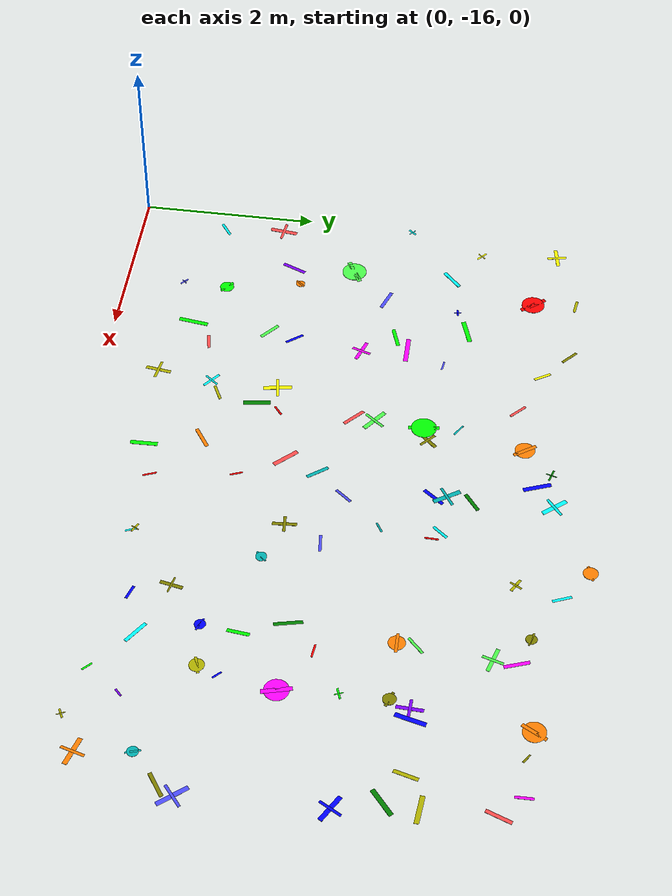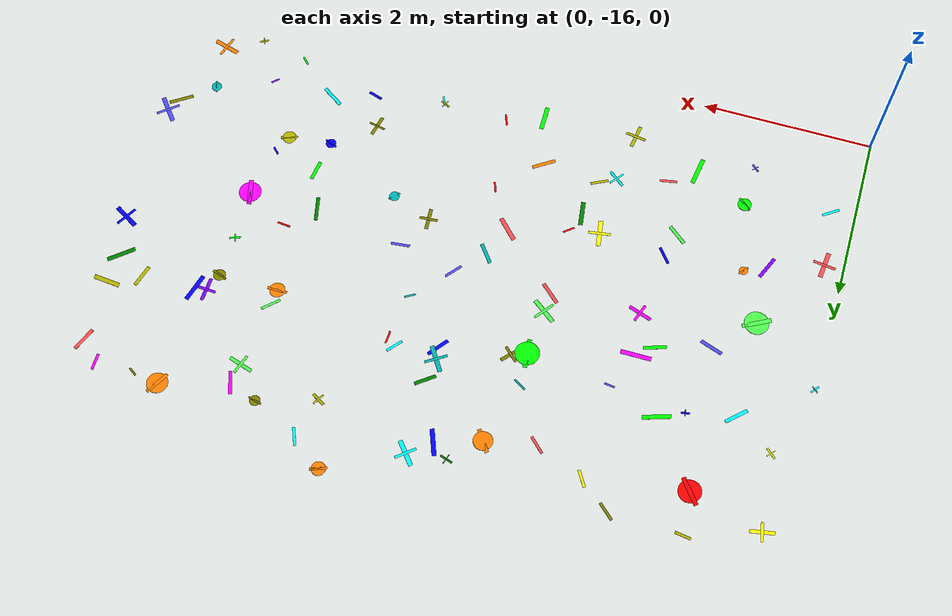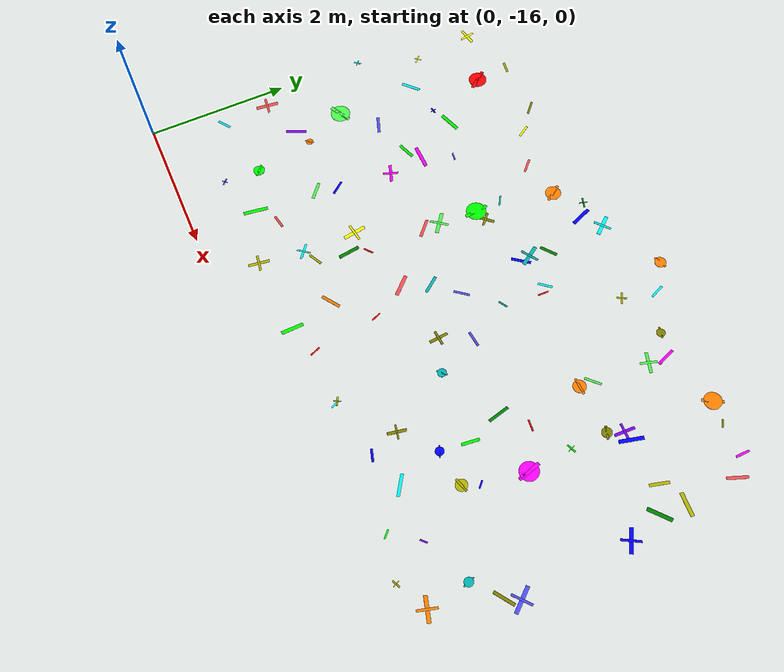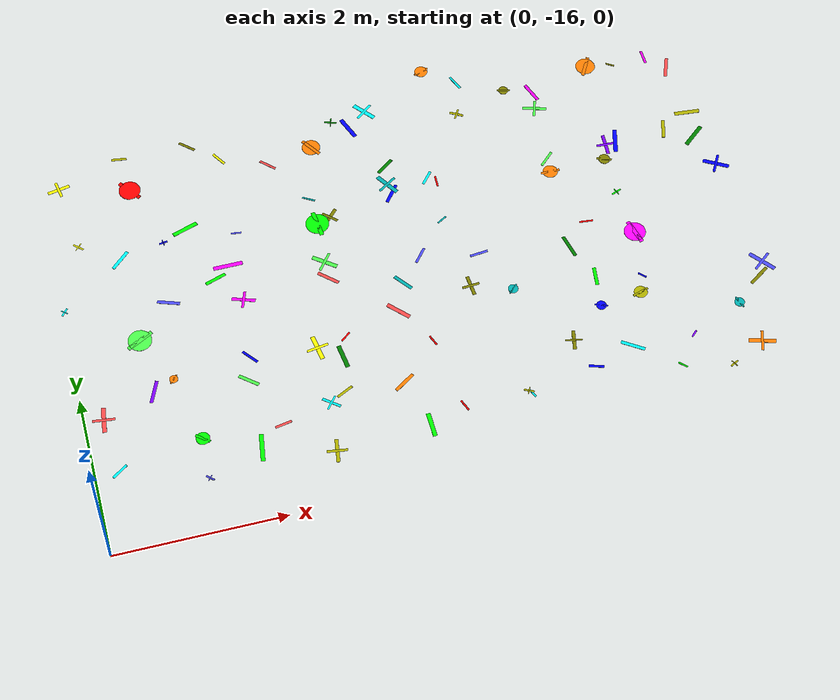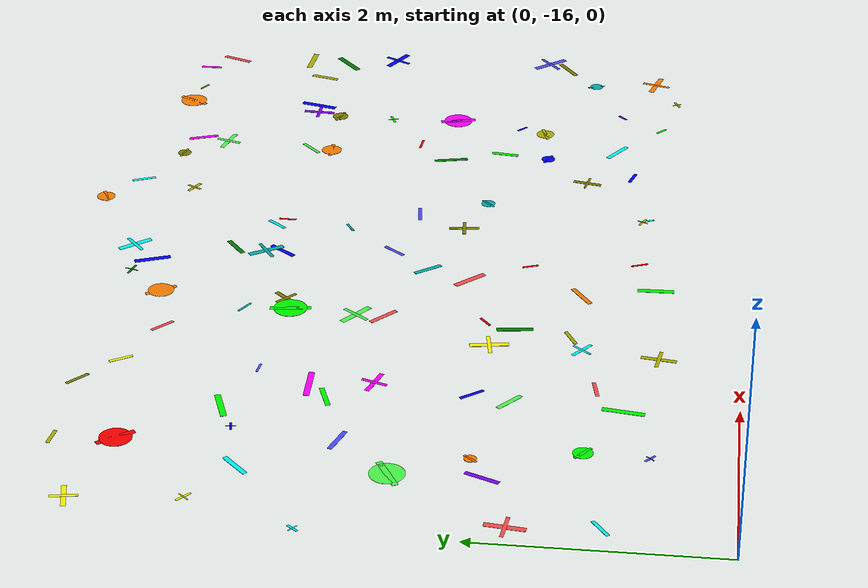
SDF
<sdf version="1.6">
 <world name="default">
  <model name="letter_N_1134">
   <static>true</static>
   <pose>0.28 -15.00 0.005 0 0 0.611</pose>
   <link name="link">
    <visual name="visual">
     <geometry><box><size>0.21 0.03 0.002</size></box></geometry>
     <material>
      <ambient>0.0 1.0 1.0 1</ambient>
      <diffuse>0.0 1.0 1.0 1</diffuse>
      <specular>0.1 0.1 0.1 1</specular>
     </material>
    </visual>
   </link>
  </model>
  <model name="letter_E_1138">
   <static>true</static>
   <pose>0.22 -14.31 0.004 0 0 1.448</pose>
   <link name="link">
    <visual name="visual">
     <geometry><box><size>0.32 0.05 0.002</size></box></geometry>
     <material>
      <ambient>1.0 0.3 0.3 1</ambient>
      <diffuse>1.0 0.3 0.3 1</diffuse>
      <specular>0.1 0.1 0.1 1</specular>
     </material>
    </visual>
    <visual name="visual2">
     <pose>0 0 0.001 0 0 1.57</pose>
     <geometry><box><size>0.26 0.03 0.001</size></box></geometry>
     <material><ambient>1.0 0.3 0.3 1</ambient><diffuse>1.0 0.3 0.3 1</diffuse></material>
    </visual>
   </link>
  </model>
  <model name="letter_I_1140">
   <static>true</static>
   <pose>0.03 -12.78 0.006 0 0 0.884</pose>
   <link name="link">
    <visual name="visual">
     <geometry><box><size>0.11 0.02 0.002</size></box></geometry>
     <material>
      <ambient>0.0 1.0 1.0 1</ambient>
      <diffuse>0.0 1.0 1.0 1</diffuse>
      <specular>0.1 0.1 0.1 1</specular>
     </material>
    </visual>
    <visual name="visual2">
     <pose>0 0 0.001 0 0 1.57</pose>
     <geometry><box><size>0.09 0.01 0.001</size></box></geometry>
     <material><ambient>0.0 1.0 1.0 1</ambient><diffuse>0.0 1.0 1.0 1</diffuse></material>
    </visual>
   </link>
  </model>
  <model name="letter_A_1142">
   <static>true</static>
   <pose>0.34 -11.92 0.008 0 0 2.406</pose>
   <link name="link">
    <visual name="visual">
     <geometry><box><size>0.14 0.02 0.002</size></box></geometry>
     <material>
      <ambient>1.0 1.0 0.0 1</ambient>
      <diffuse>1.0 1.0 0.0 1</diffuse>
      <specular>0.1 0.1 0.1 1</specular>
     </material>
    </visual>
    <visual name="visual2">
     <pose>0 0 0.001 0 0 1.57</pose>
     <geometry><box><size>0.11 0.01 0.001</size></box></geometry>
     <material><ambient>1.0 1.0 0.0 1</ambient><diffuse>1.0 1.0 0.0 1</diffuse></material>
    </visual>
   </link>
  </model>
  <model name="letter_H_1143">
   <static>true</static>
   <pose>0.25 -11.04 0.010 0 0 3.326</pose>
   <link name="link">
    <visual name="visual">
     <geometry><box><size>0.27 0.04 0.002</size></box></geometry>
     <material>
      <ambient>1.0 1.0 0.0 1</ambient>
      <diffuse>1.0 1.0 0.0 1</diffuse>
      <specular>0.1 0.1 0.1 1</specular>
     </material>
    </visual>
    <visual name="visual2">
     <pose>0 0 0.001 0 0 1.57</pose>
     <geometry><box><size>0.22 0.03 0.001</size></box></geometry>
     <material><ambient>1.0 1.0 0.0 1</ambient><diffuse>1.0 1.0 0.0 1</diffuse></material>
    </visual>
   </link>
  </model>
  <model name="letter_O_1193">
   <static>true</static>
   <pose>1.26 -14.82 0.007 0 0 2.460</pose>
   <link name="link">
    <visual name="visual">
     <geometry><box><size>0.19 0.03 0.002</size></box></geometry>
     <material>
      <ambient>0.0 1.0 0.0 1</ambient>
      <diffuse>0.0 1.0 0.0 1</diffuse>
      <specular>0.1 0.1 0.1 1</specular>
     </material>
    </visual>
    <visual name="visual2">
     <geometry><cylinder><radius>0.08</radius><length>0.002</length></cylinder></geometry>
     <material><ambient>0.0 1.0 0.0 1</ambient><diffuse>0.0 1.0 0.0 1</diffuse></material>
    </visual>
   </link>
  </model>
  <model name="letter_I_1194">
   <static>true</static>
   <pose>1.24 -15.33 0.007 0 0 2.409</pose>
   <link name="link">
    <visual name="visual">
     <geometry><box><size>0.11 0.02 0.002</size></box></geometry>
     <material>
      <ambient>0.3 0.3 1.0 1</ambient>
      <diffuse>0.3 0.3 1.0 1</diffuse>
      <specular>0.1 0.1 0.1 1</specular>
     </material>
    </visual>
    <visual name="visual2">
     <pose>0 0 0.001 0 0 1.57</pose>
     <geometry><box><size>0.08 0.01 0.001</size></box></geometry>
     <material><ambient>0.3 0.3 1.0 1</ambient><diffuse>0.3 0.3 1.0 1</diffuse></material>
    </visual>
   </link>
  </model>
  <model name="letter_R_1195">
   <static>true</static>
   <pose>0.84 -14.09 0.006 0 0 1.167</pose>
   <link name="link">
    <visual name="visual">
     <geometry><box><size>0.29 0.04 0.002</size></box></geometry>
     <material>
      <ambient>0.5 0.0 1.0 1</ambient>
      <diffuse>0.5 0.0 1.0 1</diffuse>
      <specular>0.1 0.1 0.1 1</specular>
     </material>
    </visual>
   </link>
  </model>
  <model name="letter_O_1196">
   <static>true</static>
   <pose>1.09 -13.98 0.006 0 0 4.012</pose>
   <link name="link">
    <visual name="visual">
     <geometry><box><size>0.13 0.02 0.002</size></box></geometry>
     <material>
      <ambient>1.0 0.5 0.0 1</ambient>
      <diffuse>1.0 0.5 0.0 1</diffuse>
      <specular>0.1 0.1 0.1 1</specular>
     </material>
    </visual>
    <visual name="visual2">
     <geometry><cylinder><radius>0.05</radius><length>0.002</length></cylinder></geometry>
     <material><ambient>1.0 0.5 0.0 1</ambient><diffuse>1.0 0.5 0.0 1</diffuse></material>
    </visual>
   </link>
  </model>
  <model name="letter_J_1197">
   <static>true</static>
   <pose>1.23 -12.95 0.007 0 0 5.945</pose>
   <link name="link">
    <visual name="visual">
     <geometry><box><size>0.27 0.04 0.002</size></box></geometry>
     <material>
      <ambient>0.3 0.3 1.0 1</ambient>
      <diffuse>0.3 0.3 1.0 1</diffuse>
      <specular>0.1 0.1 0.1 1</specular>
     </material>
    </visual>
   </link>
  </model>
  <model name="letter_O_1198">
   <static>true</static>
   <pose>0.81 -13.38 0.011 0 0 3.630</pose>
   <link name="link">
    <visual name="visual">
     <geometry><box><size>0.34 0.05 0.002</size></box></geometry>
     <material>
      <ambient>0.3 1.0 0.3 1</ambient>
      <diffuse>0.3 1.0 0.3 1</diffuse>
      <specular>0.1 0.1 0.1 1</specular>
     </material>
    </visual>
    <visual name="visual2">
     <geometry><cylinder><radius>0.14</radius><length>0.002</length></cylinder></geometry>
     <material><ambient>0.3 1.0 0.3 1</ambient><diffuse>0.3 1.0 0.3 1</diffuse></material>
    </visual>
   </link>
  </model>
  <model name="letter_T_1199">
   <static>true</static>
   <pose>1.33 -12.11 0.011 0 0 0.164</pose>
   <link name="link">
    <visual name="visual">
     <geometry><box><size>0.10 0.02 0.002</size></box></geometry>
     <material>
      <ambient>0.0 0.0 1.0 1</ambient>
      <diffuse>0.0 0.0 1.0 1</diffuse>
      <specular>0.1 0.1 0.1 1</specular>
     </material>
    </visual>
    <visual name="visual2">
     <pose>0 0 0.001 0 0 1.57</pose>
     <geometry><box><size>0.08 0.01 0.001</size></box></geometry>
     <material><ambient>0.0 0.0 1.0 1</ambient><diffuse>0.0 0.0 1.0 1</diffuse></material>
    </visual>
   </link>
  </model>
  <model name="letter_J_1200">
   <static>true</static>
   <pose>0.79 -12.23 0.013 0 0 3.893</pose>
   <link name="link">
    <visual name="visual">
     <geometry><box><size>0.28 0.04 0.002</size></box></geometry>
     <material>
      <ambient>0.0 1.0 1.0 1</ambient>
      <diffuse>0.0 1.0 1.0 1</diffuse>
      <specular>0.1 0.1 0.1 1</specular>
     </material>
    </visual>
   </link>
  </model>
  <model name="letter_O_1201">
   <static>true</static>
   <pose>1.08 -11.26 0.007 0 0 5.368</pose>
   <link name="link">
    <visual name="visual">
     <geometry><box><size>0.33 0.05 0.002</size></box></geometry>
     <material>
      <ambient>1.0 0.0 0.0 1</ambient>
      <diffuse>1.0 0.0 0.0 1</diffuse>
      <specular>0.1 0.1 0.1 1</specular>
     </material>
    </visual>
    <visual name="visual2">
     <geometry><cylinder><radius>0.13</radius><length>0.002</length></cylinder></geometry>
     <material><ambient>1.0 0.0 0.0 1</ambient><diffuse>1.0 0.0 0.0 1</diffuse></material>
    </visual>
   </link>
  </model>
  <model name="letter_B_1202">
   <static>true</static>
   <pose>1.04 -10.77 0.004 0 0 6.145</pose>
   <link name="link">
    <visual name="visual">
     <geometry><box><size>0.18 0.03 0.002</size></box></geometry>
     <material>
      <ambient>0.7 0.7 0.0 1</ambient>
      <diffuse>0.7 0.7 0.0 1</diffuse>
      <specular>0.1 0.1 0.1 1</specular>
     </material>
    </visual>
   </link>
  </model>
  <model name="letter_X_1251">
   <static>true</static>
   <pose>2.18 -14.87 0.010 0 0 0.184</pose>
   <link name="link">
    <visual name="visual">
     <geometry><box><size>0.20 0.03 0.002</size></box></geometry>
     <material>
      <ambient>1.0 0.3 0.3 1</ambient>
      <diffuse>1.0 0.3 0.3 1</diffuse>
      <specular>0.1 0.1 0.1 1</specular>
     </material>
    </visual>
   </link>
  </model>
  <model name="letter_Z_1252">
   <static>true</static>
   <pose>1.88 -15.10 0.006 0 0 4.564</pose>
   <link name="link">
    <visual name="visual">
     <geometry><box><size>0.34 0.05 0.002</size></box></geometry>
     <material>
      <ambient>0.0 1.0 0.0 1</ambient>
      <diffuse>0.0 1.0 0.0 1</diffuse>
      <specular>0.1 0.1 0.1 1</specular>
     </material>
    </visual>
   </link>
  </model>
  <model name="letter_N_1253">
   <static>true</static>
   <pose>2.00 -13.91 0.009 0 0 5.379</pose>
   <link name="link">
    <visual name="visual">
     <geometry><box><size>0.22 0.03 0.002</size></box></geometry>
     <material>
      <ambient>0.0 0.0 1.0 1</ambient>
      <diffuse>0.0 0.0 1.0 1</diffuse>
      <specular>0.1 0.1 0.1 1</specular>
     </material>
    </visual>
   </link>
  </model>
  <model name="letter_U_1254">
   <static>true</static>
   <pose>1.92 -14.21 0.009 0 0 5.588</pose>
   <link name="link">
    <visual name="visual">
     <geometry><box><size>0.26 0.04 0.002</size></box></geometry>
     <material>
      <ambient>0.3 1.0 0.3 1</ambient>
      <diffuse>0.3 1.0 0.3 1</diffuse>
      <specular>0.1 0.1 0.1 1</specular>
     </material>
    </visual>
   </link>
  </model>
  <model name="letter_F_1255">
   <static>true</static>
   <pose>2.09 -13.13 0.010 0 0 2.811</pose>
   <link name="link">
    <visual name="visual">
     <geometry><box><size>0.28 0.04 0.002</size></box></geometry>
     <material>
      <ambient>1.0 0.0 1.0 1</ambient>
      <diffuse>1.0 0.0 1.0 1</diffuse>
      <specular>0.1 0.1 0.1 1</specular>
     </material>
    </visual>
    <visual name="visual2">
     <pose>0 0 0.001 0 0 1.57</pose>
     <geometry><box><size>0.22 0.03 0.001</size></box></geometry>
     <material><ambient>1.0 0.0 1.0 1</ambient><diffuse>1.0 0.0 1.0 1</diffuse></material>
    </visual>
   </link>
  </model>
  <model name="letter_B_1256">
   <static>true</static>
   <pose>1.83 -12.77 0.013 0 0 3.469</pose>
   <link name="link">
    <visual name="visual">
     <geometry><box><size>0.26 0.04 0.002</size></box></geometry>
     <material>
      <ambient>0.0 1.0 0.0 1</ambient>
      <diffuse>0.0 1.0 0.0 1</diffuse>
      <specular>0.1 0.1 0.1 1</specular>
     </material>
    </visual>
   </link>
  </model>
  <model name="letter_D_1257">
   <static>true</static>
   <pose>2.01 -12.62 0.010 0 0 0.005</pose>
   <link name="link">
    <visual name="visual">
     <geometry><box><size>0.35 0.05 0.002</size></box></geometry>
     <material>
      <ambient>1.0 0.0 1.0 1</ambient>
      <diffuse>1.0 0.0 1.0 1</diffuse>
      <specular>0.1 0.1 0.1 1</specular>
     </material>
    </visual>
   </link>
  </model>
  <model name="letter_D_1258">
   <static>true</static>
   <pose>1.62 -11.98 0.007 0 0 3.463</pose>
   <link name="link">
    <visual name="visual">
     <geometry><box><size>0.32 0.05 0.002</size></box></geometry>
     <material>
      <ambient>0.0 1.0 0.0 1</ambient>
      <diffuse>0.0 1.0 0.0 1</diffuse>
      <specular>0.1 0.1 0.1 1</specular>
     </material>
    </visual>
   </link>
  </model>
  <model name="letter_N_1259">
   <static>true</static>
   <pose>2.20 -12.19 0.013 0 0 6.150</pose>
   <link name="link">
    <visual name="visual">
     <geometry><box><size>0.12 0.02 0.002</size></box></geometry>
     <material>
      <ambient>0.3 0.3 1.0 1</ambient>
      <diffuse>0.3 0.3 1.0 1</diffuse>
      <specular>0.1 0.1 0.1 1</specular>
     </material>
    </visual>
   </link>
  </model>
  <model name="letter_D_1260">
   <static>true</static>
   <pose>2.22 -11.07 0.011 0 0 5.276</pose>
   <link name="link">
    <visual name="visual">
     <geometry><box><size>0.20 0.03 0.002</size></box></geometry>
     <material>
      <ambient>1.0 1.0 0.0 1</ambient>
      <diffuse>1.0 1.0 0.0 1</diffuse>
      <specular>0.1 0.1 0.1 1</specular>
     </material>
    </visual>
   </link>
  </model>
  <model name="letter_K_1261">
   <static>true</static>
   <pose>1.88 -10.79 0.012 0 0 2.408</pose>
   <link name="link">
    <visual name="visual">
     <geometry><box><size>0.22 0.03 0.002</size></box></geometry>
     <material>
      <ambient>0.5 0.5 0.0 1</ambient>
      <diffuse>0.5 0.5 0.0 1</diffuse>
      <specular>0.1 0.1 0.1 1</specular>
     </material>
    </visual>
   </link>
  </model>
  <model name="letter_L_1314">
   <static>true</static>
   <pose>2.69 -15.35 0.010 0 0 1.425</pose>
   <link name="link">
    <visual name="visual">
     <geometry><box><size>0.29 0.04 0.002</size></box></geometry>
     <material>
      <ambient>0.7 0.7 0.0 1</ambient>
      <diffuse>0.7 0.7 0.0 1</diffuse>
      <specular>0.1 0.1 0.1 1</specular>
     </material>
    </visual>
    <visual name="visual2">
     <pose>0 0 0.001 0 0 1.57</pose>
     <geometry><box><size>0.24 0.03 0.001</size></box></geometry>
     <material><ambient>0.7 0.7 0.0 1</ambient><diffuse>0.7 0.7 0.0 1</diffuse></material>
    </visual>
   </link>
  </model>
  <model name="letter_N_1315">
   <static>true</static>
   <pose>2.95 -14.63 0.010 0 0 0.464</pose>
   <link name="link">
    <visual name="visual">
     <geometry><box><size>0.21 0.03 0.002</size></box></geometry>
     <material>
      <ambient>0.7 0.7 0.0 1</ambient>
      <diffuse>0.7 0.7 0.0 1</diffuse>
      <specular>0.1 0.1 0.1 1</specular>
     </material>
    </visual>
   </link>
  </model>
  <model name="letter_T_1316">
   <static>true</static>
   <pose>2.77 -14.73 0.009 0 0 5.612</pose>
   <link name="link">
    <visual name="visual">
     <geometry><box><size>0.23 0.03 0.002</size></box></geometry>
     <material>
      <ambient>0.0 1.0 1.0 1</ambient>
      <diffuse>0.0 1.0 1.0 1</diffuse>
      <specular>0.1 0.1 0.1 1</specular>
     </material>
    </visual>
    <visual name="visual2">
     <pose>0 0 0.001 0 0 1.57</pose>
     <geometry><box><size>0.19 0.02 0.001</size></box></geometry>
     <material><ambient>0.0 1.0 1.0 1</ambient><diffuse>0.0 1.0 1.0 1</diffuse></material>
    </visual>
   </link>
  </model>
  <model name="letter_K_1317">
   <static>true</static>
   <pose>3.13 -13.92 0.009 0 0 0.681</pose>
   <link name="link">
    <visual name="visual">
     <geometry><box><size>0.14 0.02 0.002</size></box></geometry>
     <material>
      <ambient>1.0 0.0 0.0 1</ambient>
      <diffuse>1.0 0.0 0.0 1</diffuse>
      <specular>0.1 0.1 0.1 1</specular>
     </material>
    </visual>
   </link>
  </model>
  <model name="letter_Z_1318">
   <static>true</static>
   <pose>3.04 -14.17 0.006 0 0 4.848</pose>
   <link name="link">
    <visual name="visual">
     <geometry><box><size>0.30 0.05 0.002</size></box></geometry>
     <material>
      <ambient>0.0 0.5 0.0 1</ambient>
      <diffuse>0.0 0.5 0.0 1</diffuse>
      <specular>0.1 0.1 0.1 1</specular>
     </material>
    </visual>
   </link>
  </model>
  <model name="letter_F_1319">
   <static>true</static>
   <pose>2.78 -13.98 0.003 0 0 4.868</pose>
   <link name="link">
    <visual name="visual">
     <geometry><box><size>0.32 0.05 0.002</size></box></geometry>
     <material>
      <ambient>1.0 1.0 0.0 1</ambient>
      <diffuse>1.0 1.0 0.0 1</diffuse>
      <specular>0.1 0.1 0.1 1</specular>
     </material>
    </visual>
    <visual name="visual2">
     <pose>0 0 0.001 0 0 1.57</pose>
     <geometry><box><size>0.26 0.03 0.001</size></box></geometry>
     <material><ambient>1.0 1.0 0.0 1</ambient><diffuse>1.0 1.0 0.0 1</diffuse></material>
    </visual>
   </link>
  </model>
  <model name="letter_X_1320">
   <static>true</static>
   <pose>3.12 -13.08 0.011 0 0 5.541</pose>
   <link name="link">
    <visual name="visual">
     <geometry><box><size>0.28 0.04 0.002</size></box></geometry>
     <material>
      <ambient>1.0 0.3 0.3 1</ambient>
      <diffuse>1.0 0.3 0.3 1</diffuse>
      <specular>0.1 0.1 0.1 1</specular>
     </material>
    </visual>
   </link>
  </model>
  <model name="letter_E_1321">
   <static>true</static>
   <pose>3.13 -12.85 0.009 0 0 2.488</pose>
   <link name="link">
    <visual name="visual">
     <geometry><box><size>0.32 0.05 0.002</size></box></geometry>
     <material>
      <ambient>0.3 1.0 0.3 1</ambient>
      <diffuse>0.3 1.0 0.3 1</diffuse>
      <specular>0.1 0.1 0.1 1</specular>
     </material>
    </visual>
    <visual name="visual2">
     <pose>0 0 0.001 0 0 1.57</pose>
     <geometry><box><size>0.26 0.03 0.001</size></box></geometry>
     <material><ambient>0.3 1.0 0.3 1</ambient><diffuse>0.3 1.0 0.3 1</diffuse></material>
    </visual>
   </link>
  </model>
  <model name="letter_S_1322">
   <static>true</static>
   <pose>3.15 -11.92 0.007 0 0 2.599</pose>
   <link name="link">
    <visual name="visual">
     <geometry><box><size>0.16 0.02 0.002</size></box></geometry>
     <material>
      <ambient>0.0 0.7 0.7 1</ambient>
      <diffuse>0.0 0.7 0.7 1</diffuse>
      <specular>0.1 0.1 0.1 1</specular>
     </material>
    </visual>
   </link>
  </model>
  <model name="letter_E_1323">
   <static>true</static>
   <pose>3.34 -12.24 0.005 0 0 3.966</pose>
   <link name="link">
    <visual name="visual">
     <geometry><box><size>0.26 0.04 0.002</size></box></geometry>
     <material>
      <ambient>0.5 0.5 0.0 1</ambient>
      <diffuse>0.5 0.5 0.0 1</diffuse>
      <specular>0.1 0.1 0.1 1</specular>
     </material>
    </visual>
    <visual name="visual2">
     <pose>0 0 0.001 0 0 1.57</pose>
     <geometry><box><size>0.21 0.03 0.001</size></box></geometry>
     <material><ambient>0.5 0.5 0.0 1</ambient><diffuse>0.5 0.5 0.0 1</diffuse></material>
    </visual>
   </link>
  </model>
  <model name="letter_C_1324">
   <static>true</static>
   <pose>3.17 -12.30 0.012 0 0 1.678</pose>
   <link name="link">
    <visual name="visual">
     <geometry><box><size>0.34 0.05 0.002</size></box></geometry>
     <material>
      <ambient>0.0 1.0 0.0 1</ambient>
      <diffuse>0.0 1.0 0.0 1</diffuse>
      <specular>0.1 0.1 0.1 1</specular>
     </material>
    </visual>
    <visual name="visual2">
     <geometry><cylinder><radius>0.14</radius><length>0.002</length></cylinder></geometry>
     <material><ambient>0.0 1.0 0.0 1</ambient><diffuse>0.0 1.0 0.0 1</diffuse></material>
    </visual>
   </link>
  </model>
  <model name="letter_N_1325">
   <static>true</static>
   <pose>2.78 -11.30 0.005 0 0 5.520</pose>
   <link name="link">
    <visual name="visual">
     <geometry><box><size>0.22 0.03 0.002</size></box></geometry>
     <material>
      <ambient>1.0 0.3 0.3 1</ambient>
      <diffuse>1.0 0.3 0.3 1</diffuse>
      <specular>0.1 0.1 0.1 1</specular>
     </material>
    </visual>
   </link>
  </model>
  <model name="letter_C_1326">
   <static>true</static>
   <pose>3.35 -11.18 0.009 0 0 5.312</pose>
   <link name="link">
    <visual name="visual">
     <geometry><box><size>0.28 0.04 0.002</size></box></geometry>
     <material>
      <ambient>1.0 0.5 0.0 1</ambient>
      <diffuse>1.0 0.5 0.0 1</diffuse>
      <specular>0.1 0.1 0.1 1</specular>
     </material>
    </visual>
    <visual name="visual2">
     <geometry><cylinder><radius>0.11</radius><length>0.002</length></cylinder></geometry>
     <material><ambient>1.0 0.5 0.0 1</ambient><diffuse>1.0 0.5 0.0 1</diffuse></material>
    </visual>
   </link>
  </model>
  <model name="letter_Z_1385">
   <static>true</static>
   <pose>3.64 -14.68 0.009 0 0 0.592</pose>
   <link name="link">
    <visual name="visual">
     <geometry><box><size>0.28 0.04 0.002</size></box></geometry>
     <material>
      <ambient>1.0 0.5 0.0 1</ambient>
      <diffuse>1.0 0.5 0.0 1</diffuse>
      <specular>0.1 0.1 0.1 1</specular>
     </material>
    </visual>
   </link>
  </model>
  <model name="letter_S_1386">
   <static>true</static>
   <pose>4.23 -15.14 0.006 0 0 5.091</pose>
   <link name="link">
    <visual name="visual">
     <geometry><box><size>0.15 0.02 0.002</size></box></geometry>
     <material>
      <ambient>1.0 0.0 0.0 1</ambient>
      <diffuse>1.0 0.0 0.0 1</diffuse>
      <specular>0.1 0.1 0.1 1</specular>
     </material>
    </visual>
   </link>
  </model>
  <model name="letter_U_1387">
   <static>true</static>
   <pose>3.80 -15.29 0.006 0 0 4.735</pose>
   <link name="link">
    <visual name="visual">
     <geometry><box><size>0.30 0.05 0.002</size></box></geometry>
     <material>
      <ambient>0.0 1.0 0.0 1</ambient>
      <diffuse>0.0 1.0 0.0 1</diffuse>
      <specular>0.1 0.1 0.1 1</specular>
     </material>
    </visual>
   </link>
  </model>
  <model name="letter_J_1388">
   <static>true</static>
   <pose>4.10 -14.22 0.009 0 0 5.081</pose>
   <link name="link">
    <visual name="visual">
     <geometry><box><size>0.14 0.02 0.002</size></box></geometry>
     <material>
      <ambient>1.0 0.0 0.0 1</ambient>
      <diffuse>1.0 0.0 0.0 1</diffuse>
      <specular>0.1 0.1 0.1 1</specular>
     </material>
    </visual>
   </link>
  </model>
  <model name="letter_N_1389">
   <static>true</static>
   <pose>3.81 -13.73 0.010 0 0 5.474</pose>
   <link name="link">
    <visual name="visual">
     <geometry><box><size>0.31 0.05 0.002</size></box></geometry>
     <material>
      <ambient>1.0 0.3 0.3 1</ambient>
      <diffuse>1.0 0.3 0.3 1</diffuse>
      <specular>0.1 0.1 0.1 1</specular>
     </material>
    </visual>
   </link>
  </model>
  <model name="letter_R_1390">
   <static>true</static>
   <pose>3.96 -13.36 0.005 0 0 5.362</pose>
   <link name="link">
    <visual name="visual">
     <geometry><box><size>0.26 0.04 0.002</size></box></geometry>
     <material>
      <ambient>0.0 0.7 0.7 1</ambient>
      <diffuse>0.0 0.7 0.7 1</diffuse>
      <specular>0.1 0.1 0.1 1</specular>
     </material>
    </visual>
   </link>
  </model>
  <model name="letter_B_1391">
   <static>true</static>
   <pose>4.25 -13.04 0.004 0 0 4.033</pose>
   <link name="link">
    <visual name="visual">
     <geometry><box><size>0.22 0.03 0.002</size></box></geometry>
     <material>
      <ambient>0.3 0.3 1.0 1</ambient>
      <diffuse>0.3 0.3 1.0 1</diffuse>
      <specular>0.1 0.1 0.1 1</specular>
     </material>
    </visual>
   </link>
  </model>
  <model name="letter_V_1392">
   <static>true</static>
   <pose>4.16 -11.68 0.008 0 0 0.652</pose>
   <link name="link">
    <visual name="visual">
     <geometry><box><size>0.25 0.04 0.002</size></box></geometry>
     <material>
      <ambient>0.0 0.5 0.0 1</ambient>
      <diffuse>0.0 0.5 0.0 1</diffuse>
      <specular>0.1 0.1 0.1 1</specular>
     </material>
    </visual>
   </link>
  </model>
  <model name="letter_B_1393">
   <static>true</static>
   <pose>4.14 -12.09 0.007 0 0 4.058</pose>
   <link name="link">
    <visual name="visual">
     <geometry><box><size>0.27 0.04 0.002</size></box></geometry>
     <material>
      <ambient>0.0 0.0 1.0 1</ambient>
      <diffuse>0.0 0.0 1.0 1</diffuse>
      <specular>0.1 0.1 0.1 1</specular>
     </material>
    </visual>
   </link>
  </model>
  <model name="letter_I_1394">
   <static>true</static>
   <pose>4.12 -11.95 0.013 0 0 5.293</pose>
   <link name="link">
    <visual name="visual">
     <geometry><box><size>0.32 0.05 0.002</size></box></geometry>
     <material>
      <ambient>0.0 0.7 0.7 1</ambient>
      <diffuse>0.0 0.7 0.7 1</diffuse>
      <specular>0.1 0.1 0.1 1</specular>
     </material>
    </visual>
    <visual name="visual2">
     <pose>0 0 0.001 0 0 1.57</pose>
     <geometry><box><size>0.26 0.03 0.001</size></box></geometry>
     <material><ambient>0.0 0.7 0.7 1</ambient><diffuse>0.0 0.7 0.7 1</diffuse></material>
    </visual>
   </link>
  </model>
  <model name="letter_A_1395">
   <static>true</static>
   <pose>4.11 -10.81 0.010 0 0 2.263</pose>
   <link name="link">
    <visual name="visual">
     <geometry><box><size>0.31 0.05 0.002</size></box></geometry>
     <material>
      <ambient>0.0 1.0 1.0 1</ambient>
      <diffuse>0.0 1.0 1.0 1</diffuse>
      <specular>0.1 0.1 0.1 1</specular>
     </material>
    </visual>
    <visual name="visual2">
     <pose>0 0 0.001 0 0 1.57</pose>
     <geometry><box><size>0.25 0.03 0.001</size></box></geometry>
     <material><ambient>0.0 1.0 1.0 1</ambient><diffuse>0.0 1.0 1.0 1</diffuse></material>
    </visual>
   </link>
  </model>
  <model name="letter_E_1396">
   <static>true</static>
   <pose>3.67 -10.87 0.010 0 0 2.846</pose>
   <link name="link">
    <visual name="visual">
     <geometry><box><size>0.15 0.02 0.002</size></box></geometry>
     <material>
      <ambient>0.0 0.5 0.0 1</ambient>
      <diffuse>0.0 0.5 0.0 1</diffuse>
      <specular>0.1 0.1 0.1 1</specular>
     </material>
    </visual>
    <visual name="visual2">
     <pose>0 0 0.001 0 0 1.57</pose>
     <geometry><box><size>0.12 0.01 0.001</size></box></geometry>
     <material><ambient>0.0 0.5 0.0 1</ambient><diffuse>0.0 0.5 0.0 1</diffuse></material>
    </visual>
   </link>
  </model>
  <model name="letter_S_1397">
   <static>true</static>
   <pose>3.86 -11.01 0.013 0 0 1.942</pose>
   <link name="link">
    <visual name="visual">
     <geometry><box><size>0.31 0.05 0.002</size></box></geometry>
     <material>
      <ambient>0.0 0.0 1.0 1</ambient>
      <diffuse>0.0 0.0 1.0 1</diffuse>
      <specular>0.1 0.1 0.1 1</specular>
     </material>
    </visual>
   </link>
  </model>
  <model name="letter_V_1459">
   <static>true</static>
   <pose>5.02 -15.18 0.012 0 0 5.112</pose>
   <link name="link">
    <visual name="visual">
     <geometry><box><size>0.12 0.02 0.002</size></box></geometry>
     <material>
      <ambient>0.0 1.0 1.0 1</ambient>
      <diffuse>0.0 1.0 1.0 1</diffuse>
      <specular>0.1 0.1 0.1 1</specular>
     </material>
    </visual>
   </link>
  </model>
  <model name="letter_E_1460">
   <static>true</static>
   <pose>4.99 -15.14 0.013 0 0 2.672</pose>
   <link name="link">
    <visual name="visual">
     <geometry><box><size>0.12 0.02 0.002</size></box></geometry>
     <material>
      <ambient>0.7 0.7 0.0 1</ambient>
      <diffuse>0.7 0.7 0.0 1</diffuse>
      <specular>0.1 0.1 0.1 1</specular>
     </material>
    </visual>
    <visual name="visual2">
     <pose>0 0 0.001 0 0 1.57</pose>
     <geometry><box><size>0.10 0.01 0.001</size></box></geometry>
     <material><ambient>0.7 0.7 0.0 1</ambient><diffuse>0.7 0.7 0.0 1</diffuse></material>
    </visual>
   </link>
  </model>
  <model name="letter_T_1461">
   <static>true</static>
   <pose>4.72 -13.60 0.005 0 0 1.646</pose>
   <link name="link">
    <visual name="visual">
     <geometry><box><size>0.26 0.04 0.002</size></box></geometry>
     <material>
      <ambient>0.5 0.5 0.0 1</ambient>
      <diffuse>0.5 0.5 0.0 1</diffuse>
      <specular>0.1 0.1 0.1 1</specular>
     </material>
    </visual>
    <visual name="visual2">
     <pose>0 0 0.001 0 0 1.57</pose>
     <geometry><box><size>0.21 0.03 0.001</size></box></geometry>
     <material><ambient>0.5 0.5 0.0 1</ambient><diffuse>0.5 0.5 0.0 1</diffuse></material>
    </visual>
   </link>
  </model>
  <model name="letter_C_1462">
   <static>true</static>
   <pose>5.19 -13.77 0.012 0 0 0.770</pose>
   <link name="link">
    <visual name="visual">
     <geometry><box><size>0.15 0.02 0.002</size></box></geometry>
     <material>
      <ambient>0.0 0.7 0.7 1</ambient>
      <diffuse>0.0 0.7 0.7 1</diffuse>
      <specular>0.1 0.1 0.1 1</specular>
     </material>
    </visual>
    <visual name="visual2">
     <geometry><cylinder><radius>0.06</radius><length>0.002</length></cylinder></geometry>
     <material><ambient>0.0 0.7 0.7 1</ambient><diffuse>0.0 0.7 0.7 1</diffuse></material>
    </visual>
   </link>
  </model>
  <model name="letter_P_1463">
   <static>true</static>
   <pose>4.63 -12.61 0.003 0 0 0.539</pose>
   <link name="link">
    <visual name="visual">
     <geometry><box><size>0.13 0.02 0.002</size></box></geometry>
     <material>
      <ambient>0.0 0.7 0.7 1</ambient>
      <diffuse>0.0 0.7 0.7 1</diffuse>
      <specular>0.1 0.1 0.1 1</specular>
     </material>
    </visual>
   </link>
  </model>
  <model name="letter_V_1464">
   <static>true</static>
   <pose>4.93 -13.19 0.010 0 0 0.101</pose>
   <link name="link">
    <visual name="visual">
     <geometry><box><size>0.22 0.03 0.002</size></box></geometry>
     <material>
      <ambient>0.3 0.3 1.0 1</ambient>
      <diffuse>0.3 0.3 1.0 1</diffuse>
      <specular>0.1 0.1 0.1 1</specular>
     </material>
    </visual>
   </link>
  </model>
  <model name="letter_V_1465">
   <static>true</static>
   <pose>4.71 -12.05 0.008 0 0 4.679</pose>
   <link name="link">
    <visual name="visual">
     <geometry><box><size>0.15 0.02 0.002</size></box></geometry>
     <material>
      <ambient>1.0 0.0 0.0 1</ambient>
      <diffuse>1.0 0.0 0.0 1</diffuse>
      <specular>0.1 0.1 0.1 1</specular>
     </material>
    </visual>
   </link>
  </model>
  <model name="letter_U_1466">
   <static>true</static>
   <pose>4.61 -11.97 0.006 0 0 0.878</pose>
   <link name="link">
    <visual name="visual">
     <geometry><box><size>0.20 0.03 0.002</size></box></geometry>
     <material>
      <ambient>0.0 1.0 1.0 1</ambient>
      <diffuse>0.0 1.0 1.0 1</diffuse>
      <specular>0.1 0.1 0.1 1</specular>
     </material>
    </visual>
   </link>
  </model>
  <model name="letter_V_1467">
   <static>true</static>
   <pose>5.32 -10.65 0.009 0 0 1.971</pose>
   <link name="link">
    <visual name="visual">
     <geometry><box><size>0.21 0.03 0.002</size></box></geometry>
     <material>
      <ambient>0.0 1.0 1.0 1</ambient>
      <diffuse>0.0 1.0 1.0 1</diffuse>
      <specular>0.1 0.1 0.1 1</specular>
     </material>
    </visual>
   </link>
  </model>
  <model name="letter_H_1468">
   <static>true</static>
   <pose>5.21 -11.13 0.010 0 0 5.766</pose>
   <link name="link">
    <visual name="visual">
     <geometry><box><size>0.17 0.03 0.002</size></box></geometry>
     <material>
      <ambient>0.7 0.7 0.0 1</ambient>
      <diffuse>0.7 0.7 0.0 1</diffuse>
      <specular>0.1 0.1 0.1 1</specular>
     </material>
    </visual>
    <visual name="visual2">
     <pose>0 0 0.001 0 0 1.57</pose>
     <geometry><box><size>0.14 0.02 0.001</size></box></geometry>
     <material><ambient>0.7 0.7 0.0 1</ambient><diffuse>0.7 0.7 0.0 1</diffuse></material>
    </visual>
   </link>
  </model>
  <model name="letter_C_1469">
   <static>true</static>
   <pose>4.95 -10.38 0.011 0 0 0.336</pose>
   <link name="link">
    <visual name="visual">
     <geometry><box><size>0.19 0.03 0.002</size></box></geometry>
     <material>
      <ambient>1.0 0.5 0.0 1</ambient>
      <diffuse>1.0 0.5 0.0 1</diffuse>
      <specular>0.1 0.1 0.1 1</specular>
     </material>
    </visual>
    <visual name="visual2">
     <geometry><cylinder><radius>0.08</radius><length>0.002</length></cylinder></geometry>
     <material><ambient>1.0 0.5 0.0 1</ambient><diffuse>1.0 0.5 0.0 1</diffuse></material>
    </visual>
   </link>
  </model>
  <model name="letter_E_1534">
   <static>true</static>
   <pose>5.68 -14.62 0.010 0 0 1.366</pose>
   <link name="link">
    <visual name="visual">
     <geometry><box><size>0.25 0.04 0.002</size></box></geometry>
     <material>
      <ambient>0.5 0.5 0.0 1</ambient>
      <diffuse>0.5 0.5 0.0 1</diffuse>
      <specular>0.1 0.1 0.1 1</specular>
     </material>
    </visual>
    <visual name="visual2">
     <pose>0 0 0.001 0 0 1.57</pose>
     <geometry><box><size>0.20 0.02 0.001</size></box></geometry>
     <material><ambient>0.5 0.5 0.0 1</ambient><diffuse>0.5 0.5 0.0 1</diffuse></material>
    </visual>
   </link>
  </model>
  <model name="letter_D_1535">
   <static>true</static>
   <pose>6.32 -14.86 0.010 0 0 2.553</pose>
   <link name="link">
    <visual name="visual">
     <geometry><box><size>0.29 0.04 0.002</size></box></geometry>
     <material>
      <ambient>0.0 1.0 1.0 1</ambient>
      <diffuse>0.0 1.0 1.0 1</diffuse>
      <specular>0.1 0.1 0.1 1</specular>
     </material>
    </visual>
   </link>
  </model>
  <model name="letter_P_1536">
   <static>true</static>
   <pose>5.83 -15.02 0.008 0 0 2.839</pose>
   <link name="link">
    <visual name="visual">
     <geometry><box><size>0.17 0.03 0.002</size></box></geometry>
     <material>
      <ambient>0.0 0.0 1.0 1</ambient>
      <diffuse>0.0 0.0 1.0 1</diffuse>
      <specular>0.1 0.1 0.1 1</specular>
     </material>
    </visual>
   </link>
  </model>
  <model name="letter_O_1537">
   <static>true</static>
   <pose>6.13 -14.24 0.003 0 0 5.896</pose>
   <link name="link">
    <visual name="visual">
     <geometry><box><size>0.16 0.02 0.002</size></box></geometry>
     <material>
      <ambient>0.0 0.0 1.0 1</ambient>
      <diffuse>0.0 0.0 1.0 1</diffuse>
      <specular>0.1 0.1 0.1 1</specular>
     </material>
    </visual>
    <visual name="visual2">
     <geometry><cylinder><radius>0.06</radius><length>0.002</length></cylinder></geometry>
     <material><ambient>0.0 0.0 1.0 1</ambient><diffuse>0.0 0.0 1.0 1</diffuse></material>
    </visual>
   </link>
  </model>
  <model name="letter_M_1538">
   <static>true</static>
   <pose>6.18 -13.84 0.006 0 0 4.591</pose>
   <link name="link">
    <visual name="visual">
     <geometry><box><size>0.24 0.04 0.002</size></box></geometry>
     <material>
      <ambient>0.0 1.0 0.0 1</ambient>
      <diffuse>0.0 1.0 0.0 1</diffuse>
      <specular>0.1 0.1 0.1 1</specular>
     </material>
    </visual>
   </link>
  </model>
  <model name="letter_K_1539">
   <static>true</static>
   <pose>6.30 -13.06 0.005 0 0 3.041</pose>
   <link name="link">
    <visual name="visual">
     <geometry><box><size>0.16 0.02 0.002</size></box></geometry>
     <material>
      <ambient>1.0 0.0 0.0 1</ambient>
      <diffuse>1.0 0.0 0.0 1</diffuse>
      <specular>0.1 0.1 0.1 1</specular>
     </material>
    </visual>
   </link>
  </model>
  <model name="letter_N_1540">
   <static>true</static>
   <pose>6.00 -13.36 0.011 0 0 4.941</pose>
   <link name="link">
    <visual name="visual">
     <geometry><box><size>0.30 0.04 0.002</size></box></geometry>
     <material>
      <ambient>0.0 0.5 0.0 1</ambient>
      <diffuse>0.0 0.5 0.0 1</diffuse>
      <specular>0.1 0.1 0.1 1</specular>
     </material>
    </visual>
   </link>
  </model>
  <model name="letter_Q_1541">
   <static>true</static>
   <pose>6.09 -12.25 0.004 0 0 3.151</pose>
   <link name="link">
    <visual name="visual">
     <geometry><box><size>0.23 0.03 0.002</size></box></geometry>
     <material>
      <ambient>1.0 0.5 0.0 1</ambient>
      <diffuse>1.0 0.5 0.0 1</diffuse>
      <specular>0.1 0.1 0.1 1</specular>
     </material>
    </visual>
    <visual name="visual2">
     <geometry><cylinder><radius>0.09</radius><length>0.002</length></cylinder></geometry>
     <material><ambient>1.0 0.5 0.0 1</ambient><diffuse>1.0 0.5 0.0 1</diffuse></material>
    </visual>
   </link>
  </model>
  <model name="letter_W_1542">
   <static>true</static>
   <pose>6.10 -12.06 0.007 0 0 3.906</pose>
   <link name="link">
    <visual name="visual">
     <geometry><box><size>0.23 0.03 0.002</size></box></geometry>
     <material>
      <ambient>0.3 1.0 0.3 1</ambient>
      <diffuse>0.3 1.0 0.3 1</diffuse>
      <specular>0.1 0.1 0.1 1</specular>
     </material>
    </visual>
   </link>
  </model>
  <model name="letter_H_1543">
   <static>true</static>
   <pose>6.17 -11.28 0.004 0 0 2.846</pose>
   <link name="link">
    <visual name="visual">
     <geometry><box><size>0.29 0.04 0.002</size></box></geometry>
     <material>
      <ambient>0.3 1.0 0.3 1</ambient>
      <diffuse>0.3 1.0 0.3 1</diffuse>
      <specular>0.1 0.1 0.1 1</specular>
     </material>
    </visual>
    <visual name="visual2">
     <pose>0 0 0.001 0 0 1.57</pose>
     <geometry><box><size>0.23 0.03 0.001</size></box></geometry>
     <material><ambient>0.3 1.0 0.3 1</ambient><diffuse>0.3 1.0 0.3 1</diffuse></material>
    </visual>
   </link>
  </model>
  <model name="letter_C_1544">
   <static>true</static>
   <pose>5.87 -10.92 0.012 0 0 6.029</pose>
   <link name="link">
    <visual name="visual">
     <geometry><box><size>0.16 0.02 0.002</size></box></geometry>
     <material>
      <ambient>0.5 0.5 0.0 1</ambient>
      <diffuse>0.5 0.5 0.0 1</diffuse>
      <specular>0.1 0.1 0.1 1</specular>
     </material>
    </visual>
    <visual name="visual2">
     <geometry><cylinder><radius>0.06</radius><length>0.002</length></cylinder></geometry>
     <material><ambient>0.5 0.5 0.0 1</ambient><diffuse>0.5 0.5 0.0 1</diffuse></material>
    </visual>
   </link>
  </model>
  <model name="letter_B_1545">
   <static>true</static>
   <pose>6.20 -11.04 0.013 0 0 1.919</pose>
   <link name="link">
    <visual name="visual">
     <geometry><box><size>0.27 0.04 0.002</size></box></geometry>
     <material>
      <ambient>1.0 0.0 1.0 1</ambient>
      <diffuse>1.0 0.0 1.0 1</diffuse>
      <specular>0.1 0.1 0.1 1</specular>
     </material>
    </visual>
   </link>
  </model>
  <model name="letter_I_1612">
   <static>true</static>
   <pose>7.38 -15.38 0.011 0 0 3.599</pose>
   <link name="link">
    <visual name="visual">
     <geometry><box><size>0.11 0.02 0.002</size></box></geometry>
     <material>
      <ambient>0.7 0.7 0.0 1</ambient>
      <diffuse>0.7 0.7 0.0 1</diffuse>
      <specular>0.1 0.1 0.1 1</specular>
     </material>
    </visual>
    <visual name="visual2">
     <pose>0 0 0.001 0 0 1.57</pose>
     <geometry><box><size>0.09 0.01 0.001</size></box></geometry>
     <material><ambient>0.7 0.7 0.0 1</ambient><diffuse>0.7 0.7 0.0 1</diffuse></material>
    </visual>
   </link>
  </model>
  <model name="letter_M_1613">
   <static>true</static>
   <pose>7.06 -14.88 0.004 0 0 3.912</pose>
   <link name="link">
    <visual name="visual">
     <geometry><box><size>0.10 0.02 0.002</size></box></geometry>
     <material>
      <ambient>0.5 0.0 1.0 1</ambient>
      <diffuse>0.5 0.0 1.0 1</diffuse>
      <specular>0.1 0.1 0.1 1</specular>
     </material>
    </visual>
   </link>
  </model>
  <model name="letter_K_1614">
   <static>true</static>
   <pose>6.80 -15.25 0.012 0 0 2.371</pose>
   <link name="link">
    <visual name="visual">
     <geometry><box><size>0.12 0.02 0.002</size></box></geometry>
     <material>
      <ambient>0.0 1.0 0.0 1</ambient>
      <diffuse>0.0 1.0 0.0 1</diffuse>
      <specular>0.1 0.1 0.1 1</specular>
     </material>
    </visual>
   </link>
  </model>
  <model name="letter_N_1615">
   <static>true</static>
   <pose>6.72 -13.96 0.004 0 0 5.513</pose>
   <link name="link">
    <visual name="visual">
     <geometry><box><size>0.11 0.02 0.002</size></box></geometry>
     <material>
      <ambient>0.0 0.0 1.0 1</ambient>
      <diffuse>0.0 0.0 1.0 1</diffuse>
      <specular>0.1 0.1 0.1 1</specular>
     </material>
    </visual>
   </link>
  </model>
  <model name="letter_Q_1616">
   <static>true</static>
   <pose>6.63 -14.18 0.005 0 0 0.302</pose>
   <link name="link">
    <visual name="visual">
     <geometry><box><size>0.20 0.03 0.002</size></box></geometry>
     <material>
      <ambient>0.7 0.7 0.0 1</ambient>
      <diffuse>0.7 0.7 0.0 1</diffuse>
      <specular>0.1 0.1 0.1 1</specular>
     </material>
    </visual>
    <visual name="visual2">
     <geometry><cylinder><radius>0.08</radius><length>0.002</length></cylinder></geometry>
     <material><ambient>0.7 0.7 0.0 1</ambient><diffuse>0.7 0.7 0.0 1</diffuse></material>
    </visual>
   </link>
  </model>
  <model name="letter_G_1617">
   <static>true</static>
   <pose>6.82 -13.35 0.007 0 0 1.825</pose>
   <link name="link">
    <visual name="visual">
     <geometry><box><size>0.32 0.05 0.002</size></box></geometry>
     <material>
      <ambient>1.0 0.0 1.0 1</ambient>
      <diffuse>1.0 0.0 1.0 1</diffuse>
      <specular>0.1 0.1 0.1 1</specular>
     </material>
    </visual>
    <visual name="visual2">
     <geometry><cylinder><radius>0.13</radius><length>0.002</length></cylinder></geometry>
     <material><ambient>1.0 0.0 1.0 1</ambient><diffuse>1.0 0.0 1.0 1</diffuse></material>
    </visual>
   </link>
  </model>
  <model name="letter_E_1618">
   <static>true</static>
   <pose>6.78 -12.74 0.007 0 0 0.366</pose>
   <link name="link">
    <visual name="visual">
     <geometry><box><size>0.13 0.02 0.002</size></box></geometry>
     <material>
      <ambient>0.0 1.0 0.0 1</ambient>
      <diffuse>0.0 1.0 0.0 1</diffuse>
      <specular>0.1 0.1 0.1 1</specular>
     </material>
    </visual>
    <visual name="visual2">
     <pose>0 0 0.001 0 0 1.57</pose>
     <geometry><box><size>0.10 0.01 0.001</size></box></geometry>
     <material><ambient>0.0 1.0 0.0 1</ambient><diffuse>0.0 1.0 0.0 1</diffuse></material>
    </visual>
   </link>
  </model>
  <model name="letter_L_1619">
   <static>true</static>
   <pose>6.86 -12.03 0.006 0 0 1.526</pose>
   <link name="link">
    <visual name="visual">
     <geometry><box><size>0.28 0.04 0.002</size></box></geometry>
     <material>
      <ambient>0.5 0.0 1.0 1</ambient>
      <diffuse>0.5 0.0 1.0 1</diffuse>
      <specular>0.1 0.1 0.1 1</specular>
     </material>
    </visual>
    <visual name="visual2">
     <pose>0 0 0.001 0 0 1.57</pose>
     <geometry><box><size>0.22 0.03 0.001</size></box></geometry>
     <material><ambient>0.5 0.0 1.0 1</ambient><diffuse>0.5 0.0 1.0 1</diffuse></material>
    </visual>
   </link>
  </model>
  <model name="letter_G_1620">
   <static>true</static>
   <pose>6.78 -12.24 0.012 0 0 2.789</pose>
   <link name="link">
    <visual name="visual">
     <geometry><box><size>0.18 0.03 0.002</size></box></geometry>
     <material>
      <ambient>0.5 0.5 0.0 1</ambient>
      <diffuse>0.5 0.5 0.0 1</diffuse>
      <specular>0.1 0.1 0.1 1</specular>
     </material>
    </visual>
    <visual name="visual2">
     <geometry><cylinder><radius>0.07</radius><length>0.002</length></cylinder></geometry>
     <material><ambient>0.5 0.5 0.0 1</ambient><diffuse>0.5 0.5 0.0 1</diffuse></material>
    </visual>
   </link>
  </model>
  <model name="letter_J_1621">
   <static>true</static>
   <pose>6.99 -12.01 0.012 0 0 4.459</pose>
   <link name="link">
    <visual name="visual">
     <geometry><box><size>0.33 0.05 0.002</size></box></geometry>
     <material>
      <ambient>0.0 0.0 1.0 1</ambient>
      <diffuse>0.0 0.0 1.0 1</diffuse>
      <specular>0.1 0.1 0.1 1</specular>
     </material>
    </visual>
   </link>
  </model>
  <model name="letter_O_1622">
   <static>true</static>
   <pose>6.97 -10.81 0.011 0 0 1.061</pose>
   <link name="link">
    <visual name="visual">
     <geometry><box><size>0.29 0.04 0.002</size></box></geometry>
     <material>
      <ambient>1.0 0.5 0.0 1</ambient>
      <diffuse>1.0 0.5 0.0 1</diffuse>
      <specular>0.1 0.1 0.1 1</specular>
     </material>
    </visual>
    <visual name="visual2">
     <geometry><cylinder><radius>0.12</radius><length>0.002</length></cylinder></geometry>
     <material><ambient>1.0 0.5 0.0 1</ambient><diffuse>1.0 0.5 0.0 1</diffuse></material>
    </visual>
   </link>
  </model>
  <model name="letter_D_1623">
   <static>true</static>
   <pose>7.28 -10.86 0.009 0 0 2.567</pose>
   <link name="link">
    <visual name="visual">
     <geometry><box><size>0.11 0.02 0.002</size></box></geometry>
     <material>
      <ambient>0.5 0.5 0.0 1</ambient>
      <diffuse>0.5 0.5 0.0 1</diffuse>
      <specular>0.1 0.1 0.1 1</specular>
     </material>
    </visual>
   </link>
  </model>
  <model name="letter_O_1690">
   <static>true</static>
   <pose>7.71 -14.60 0.004 0 0 1.889</pose>
   <link name="link">
    <visual name="visual">
     <geometry><box><size>0.16 0.02 0.002</size></box></geometry>
     <material>
      <ambient>0.0 0.7 0.7 1</ambient>
      <diffuse>0.0 0.7 0.7 1</diffuse>
      <specular>0.1 0.1 0.1 1</specular>
     </material>
    </visual>
    <visual name="visual2">
     <geometry><cylinder><radius>0.06</radius><length>0.002</length></cylinder></geometry>
     <material><ambient>0.0 0.7 0.7 1</ambient><diffuse>0.0 0.7 0.7 1</diffuse></material>
    </visual>
   </link>
  </model>
  <model name="letter_E_1691">
   <static>true</static>
   <pose>7.79 -15.17 0.011 0 0 5.998</pose>
   <link name="link">
    <visual name="visual">
     <geometry><box><size>0.32 0.05 0.002</size></box></geometry>
     <material>
      <ambient>1.0 0.5 0.0 1</ambient>
      <diffuse>1.0 0.5 0.0 1</diffuse>
      <specular>0.1 0.1 0.1 1</specular>
     </material>
    </visual>
    <visual name="visual2">
     <pose>0 0 0.001 0 0 1.57</pose>
     <geometry><box><size>0.26 0.03 0.001</size></box></geometry>
     <material><ambient>1.0 0.5 0.0 1</ambient><diffuse>1.0 0.5 0.0 1</diffuse></material>
    </visual>
   </link>
  </model>
  <model name="letter_H_1692">
   <static>true</static>
   <pose>8.15 -14.13 0.013 0 0 2.260</pose>
   <link name="link">
    <visual name="visual">
     <geometry><box><size>0.35 0.05 0.002</size></box></geometry>
     <material>
      <ambient>0.3 0.3 1.0 1</ambient>
      <diffuse>0.3 0.3 1.0 1</diffuse>
      <specular>0.1 0.1 0.1 1</specular>
     </material>
    </visual>
    <visual name="visual2">
     <pose>0 0 0.001 0 0 1.57</pose>
     <geometry><box><size>0.28 0.03 0.001</size></box></geometry>
     <material><ambient>0.3 0.3 1.0 1</ambient><diffuse>0.3 0.3 1.0 1</diffuse></material>
    </visual>
   </link>
  </model>
  <model name="letter_K_1693">
   <static>true</static>
   <pose>8.05 -14.31 0.010 0 0 0.597</pose>
   <link name="link">
    <visual name="visual">
     <geometry><box><size>0.29 0.04 0.002</size></box></geometry>
     <material>
      <ambient>0.5 0.5 0.0 1</ambient>
      <diffuse>0.5 0.5 0.0 1</diffuse>
      <specular>0.1 0.1 0.1 1</specular>
     </material>
    </visual>
   </link>
  </model>
  <model name="letter_I_1696">
   <static>true</static>
   <pose>8.08 -12.64 0.008 0 0 2.624</pose>
   <link name="link">
    <visual name="visual">
     <geometry><box><size>0.32 0.05 0.002</size></box></geometry>
     <material>
      <ambient>0.0 0.0 1.0 1</ambient>
      <diffuse>0.0 0.0 1.0 1</diffuse>
      <specular>0.1 0.1 0.1 1</specular>
     </material>
    </visual>
    <visual name="visual2">
     <pose>0 0 0.001 0 0 1.57</pose>
     <geometry><box><size>0.26 0.03 0.001</size></box></geometry>
     <material><ambient>0.0 0.0 1.0 1</ambient><diffuse>0.0 0.0 1.0 1</diffuse></material>
    </visual>
   </link>
  </model>
  <model name="letter_D_1697">
   <static>true</static>
   <pose>7.95 -12.17 0.008 0 0 3.841</pose>
   <link name="link">
    <visual name="visual">
     <geometry><box><size>0.33 0.05 0.002</size></box></geometry>
     <material>
      <ambient>0.0 0.5 0.0 1</ambient>
      <diffuse>0.0 0.5 0.0 1</diffuse>
      <specular>0.1 0.1 0.1 1</specular>
     </material>
    </visual>
   </link>
  </model>
  <model name="letter_X_1698">
   <static>true</static>
   <pose>7.98 -11.81 0.009 0 0 6.194</pose>
   <link name="link">
    <visual name="visual">
     <geometry><box><size>0.31 0.05 0.002</size></box></geometry>
     <material>
      <ambient>0.7 0.7 0.0 1</ambient>
      <diffuse>0.7 0.7 0.0 1</diffuse>
      <specular>0.1 0.1 0.1 1</specular>
     </material>
    </visual>
   </link>
  </model>
  <model name="letter_W_1699">
   <static>true</static>
   <pose>7.62 -11.98 0.008 0 0 4.443</pose>
   <link name="link">
    <visual name="visual">
     <geometry><box><size>0.26 0.04 0.002</size></box></geometry>
     <material>
      <ambient>0.7 0.7 0.0 1</ambient>
      <diffuse>0.7 0.7 0.0 1</diffuse>
      <specular>0.1 0.1 0.1 1</specular>
     </material>
    </visual>
   </link>
  </model>
  <model name="letter_U_1700">
   <static>true</static>
   <pose>7.72 -10.85 0.012 0 0 4.723</pose>
   <link name="link">
    <visual name="visual">
     <geometry><box><size>0.19 0.03 0.002</size></box></geometry>
     <material>
      <ambient>1.0 0.0 1.0 1</ambient>
      <diffuse>1.0 0.0 1.0 1</diffuse>
      <specular>0.1 0.1 0.1 1</specular>
     </material>
    </visual>
   </link>
  </model>
  <model name="letter_M_1702">
   <static>true</static>
   <pose>7.95 -11.07 0.003 0 0 1.203</pose>
   <link name="link">
    <visual name="visual">
     <geometry><box><size>0.28 0.04 0.002</size></box></geometry>
     <material>
      <ambient>1.0 0.3 0.3 1</ambient>
      <diffuse>1.0 0.3 0.3 1</diffuse>
      <specular>0.1 0.1 0.1 1</specular>
     </material>
    </visual>
   </link>
  </model>
 </world>
</sdf>
